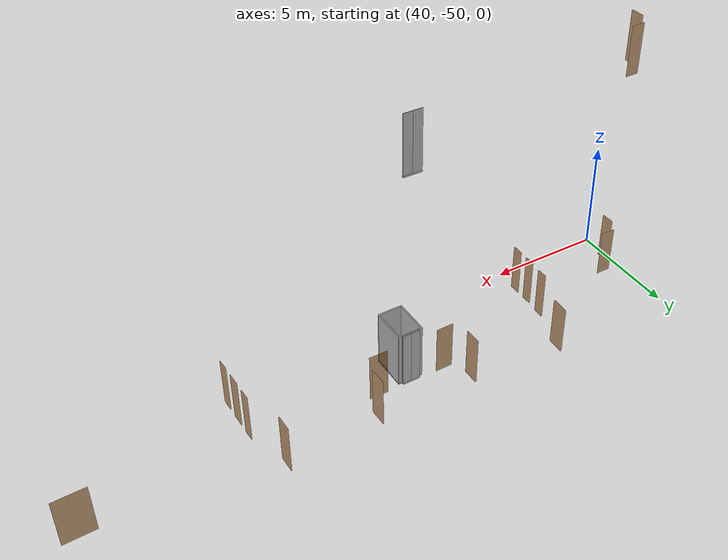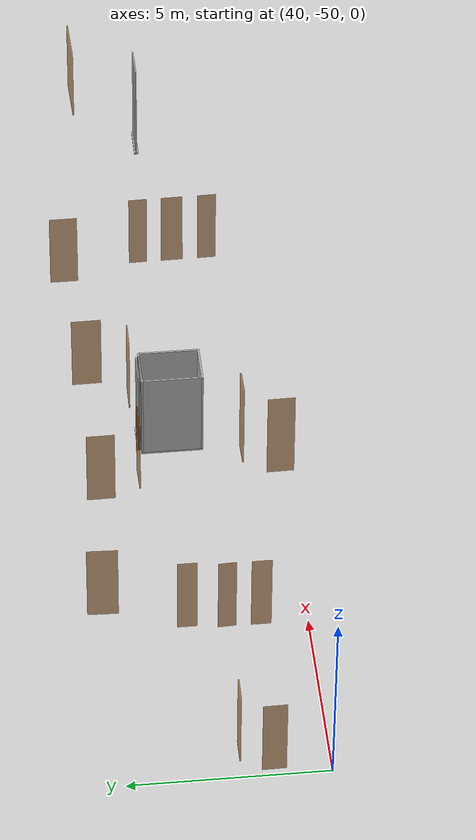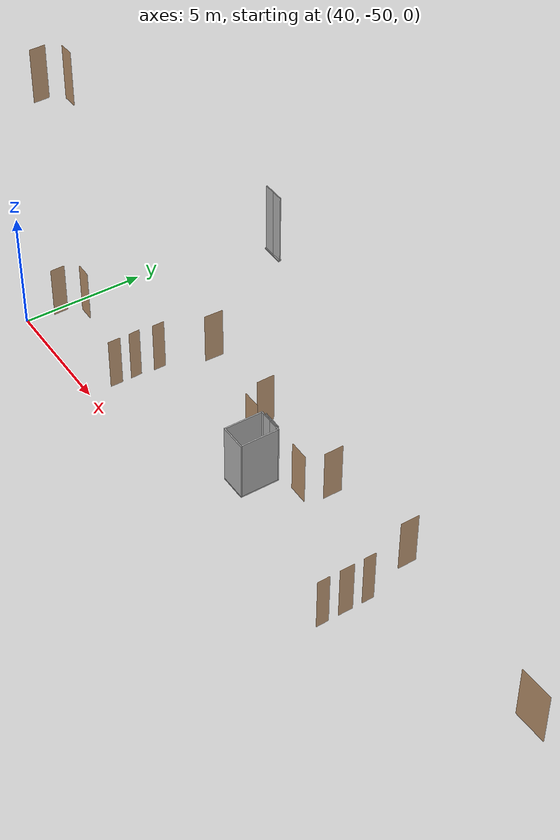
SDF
<sdf version="1.7">
 <world name="sim_world">
  <model name="door22">
   <pose>40.84886749938164 -47.81650821195254 0.0 0 0 3.127897356564713</pose>
   <link name="right">
    <pose>0 0 1.11 0 0 0</pose>
    <visual name="right_visual">
     <geometry><box><size>0.631252110748588 0.03 2.2</size></box></geometry>
     <material>
      <ambient>0.5 0.25 0 0.6</ambient>
      <diffuse>0.5 0.25 0 0.6</diffuse>
      <pbr><metal><metalness>0.0</metalness></metal></pbr>
     </material>
    </visual>
    <collision name="right_collision">
     <geometry><box><size>0.631252110748588 0.03 2.2</size></box></geometry>
     <surface><contact><collide_bitmask>0x02</collide_bitmask></contact></surface>
    </collision>
    <inertial>
     <mass>50.0</mass>
     <inertia><ixx>20.17041666666667</ixx><iyy>21.826996780518954</iyy><izz>1.6640801138522818</izz></inertia>
    </inertial>
   </link>
   <joint name="right_joint" type="revolute">
    <parent>world</parent>
    <child>right</child>
    <axis><xyz>0 0 1</xyz><limit><lower>0</lower><upper>1.57</upper></limit></axis>
    <pose>0.320626055374294 0 0 0 0 0</pose>
   </joint>
   <plugin name="register_component" filename="libregister_component.so">
    <component name="Door">
     <v_max_door>0.5</v_max_door>
     <a_max_door>0.3</a_max_door>
     <a_nom_door>0.15</a_nom_door>
     <dx_min_door>0.01</dx_min_door>
     <f_max_door>500.0</f_max_door>
     <ros_interface>true</ros_interface>
     <door name="door22" type="SwingDoor" left_joint_name="empty_joint" right_joint_name="right_joint"/>
    </component>
   </plugin>
  </model>
  <model name="door23_end">
   <pose>40.216500862856336 -48.60354288504393 0.0 0 0 1.5856953258611415</pose>
   <link name="right">
    <pose>0 0 1.11 0 0 0</pose>
    <visual name="right_visual">
     <geometry><box><size>0.5891750900136934 0.03 2.2</size></box></geometry>
     <material>
      <ambient>0.5 0.25 0 0.6</ambient>
      <diffuse>0.5 0.25 0 0.6</diffuse>
      <pbr><metal><metalness>0.0</metalness></metal></pbr>
     </material>
    </visual>
    <collision name="right_collision">
     <geometry><box><size>0.5891750900136934 0.03 2.2</size></box></geometry>
     <surface><contact><collide_bitmask>0x02</collide_bitmask></contact></surface>
    </collision>
    <inertial>
     <mass>50.0</mass>
     <inertia><ixx>20.17041666666667</ixx><iyy>21.61303036121935</iyy><izz>1.4501136945526822</izz></inertia>
    </inertial>
   </link>
   <joint name="right_joint" type="revolute">
    <parent>world</parent>
    <child>right</child>
    <axis><xyz>0 0 1</xyz><limit><lower>0</lower><upper>1.57</upper></limit></axis>
    <pose>0.2995875450068467 0 0 0 0 0</pose>
   </joint>
   <plugin name="register_component" filename="libregister_component.so">
    <component name="Door">
     <v_max_door>0.5</v_max_door>
     <a_max_door>0.3</a_max_door>
     <a_nom_door>0.15</a_nom_door>
     <dx_min_door>0.01</dx_min_door>
     <f_max_door>500.0</f_max_door>
     <ros_interface>true</ros_interface>
     <door name="door23_end" type="SwingDoor" left_joint_name="empty_joint" right_joint_name="right_joint"/>
    </component>
   </plugin>
  </model>
  <model name="door37">
   <pose>45.75023425020082 -44.9492007648427 0.0 0 0 1.535102477328866</pose>
   <link name="right">
    <pose>0 0 1.11 0 0 0</pose>
    <visual name="right_visual">
     <geometry><box><size>0.7761732290088359 0.03 2.2</size></box></geometry>
     <material>
      <ambient>0.5 0.25 0 0.6</ambient>
      <diffuse>0.5 0.25 0 0.6</diffuse>
      <pbr><metal><metalness>0.0</metalness></metal></pbr>
     </material>
    </visual>
    <collision name="right_collision">
     <geometry><box><size>0.7761732290088359 0.03 2.2</size></box></geometry>
     <surface><contact><collide_bitmask>0x02</collide_bitmask></contact></surface>
    </collision>
    <inertial>
     <mass>50.0</mass>
     <inertia><ixx>20.17041666666667</ixx><iyy>22.67685367262502</iyy><izz>2.5139370059583452</izz></inertia>
    </inertial>
   </link>
   <joint name="right_joint" type="revolute">
    <parent>world</parent>
    <child>right</child>
    <axis><xyz>0 0 -1</xyz><limit><lower>0</lower><upper>1.57</upper></limit></axis>
    <pose>0.39308661450441795 0 0 0 0 0</pose>
   </joint>
   <plugin name="register_component" filename="libregister_component.so">
    <component name="Door">
     <v_max_door>0.5</v_max_door>
     <a_max_door>0.3</a_max_door>
     <a_nom_door>0.15</a_nom_door>
     <dx_min_door>0.01</dx_min_door>
     <f_max_door>500.0</f_max_door>
     <ros_interface>true</ros_interface>
     <door name="door37" type="SwingDoor" left_joint_name="empty_joint" right_joint_name="right_joint"/>
    </component>
   </plugin>
  </model>
  <model name="door38">
   <pose>45.11608515621298 -46.994259135333024 0.0 0 0 1.5707963267948966</pose>
   <link name="right">
    <pose>0 0 1.11 0 0 0</pose>
    <visual name="right_visual">
     <geometry><box><size>0.48633469993334955 0.03 2.2</size></box></geometry>
     <material>
      <ambient>0.5 0.25 0 0.6</ambient>
      <diffuse>0.5 0.25 0 0.6</diffuse>
      <pbr><metal><metalness>0.0</metalness></metal></pbr>
     </material>
    </visual>
    <collision name="right_collision">
     <geometry><box><size>0.48633469993334955 0.03 2.2</size></box></geometry>
     <surface><contact><collide_bitmask>0x02</collide_bitmask></contact></surface>
    </collision>
    <inertial>
     <mass>50.0</mass>
     <inertia><ixx>20.17041666666667</ixx><iyy>21.15217266816359</iyy><izz>0.9892560014969216</izz></inertia>
    </inertial>
   </link>
   <joint name="right_joint" type="revolute">
    <parent>world</parent>
    <child>right</child>
    <axis><xyz>0 0 -1</xyz><limit><lower>0</lower><upper>1.57</upper></limit></axis>
    <pose>0.24816734996667478 0 0 0 0 0</pose>
   </joint>
   <plugin name="register_component" filename="libregister_component.so">
    <component name="Door">
     <v_max_door>0.5</v_max_door>
     <a_max_door>0.3</a_max_door>
     <a_nom_door>0.15</a_nom_door>
     <dx_min_door>0.01</dx_min_door>
     <f_max_door>500.0</f_max_door>
     <ros_interface>true</ros_interface>
     <door name="door38" type="SwingDoor" left_joint_name="empty_joint" right_joint_name="right_joint"/>
    </component>
   </plugin>
  </model>
  <model name="door39">
   <pose>45.0316720284141 -47.97852345123005 0.0 0 0 1.6144533395293716</pose>
   <link name="right">
    <pose>0 0 1.11 0 0 0</pose>
    <visual name="right_visual">
     <geometry><box><size>0.4542000510396327 0.03 2.2</size></box></geometry>
     <material>
      <ambient>0.5 0.25 0 0.6</ambient>
      <diffuse>0.5 0.25 0 0.6</diffuse>
      <pbr><metal><metalness>0.0</metalness></metal></pbr>
     </material>
    </visual>
    <collision name="right_collision">
     <geometry><box><size>0.4542000510396327 0.03 2.2</size></box></geometry>
     <surface><contact><collide_bitmask>0x02</collide_bitmask></contact></surface>
    </collision>
    <inertial>
     <mass>50.0</mass>
     <inertia><ixx>20.17041666666667</ixx><iyy>21.02624035985169</iyy><izz>0.8633236931850207</izz></inertia>
    </inertial>
   </link>
   <joint name="right_joint" type="revolute">
    <parent>world</parent>
    <child>right</child>
    <axis><xyz>0 0 -1</xyz><limit><lower>0</lower><upper>1.57</upper></limit></axis>
    <pose>0.23210002551981634 0 0 0 0 0</pose>
   </joint>
   <plugin name="register_component" filename="libregister_component.so">
    <component name="Door">
     <v_max_door>0.5</v_max_door>
     <a_max_door>0.3</a_max_door>
     <a_nom_door>0.15</a_nom_door>
     <dx_min_door>0.01</dx_min_door>
     <f_max_door>500.0</f_max_door>
     <ros_interface>true</ros_interface>
     <door name="door39" type="SwingDoor" left_joint_name="empty_joint" right_joint_name="right_joint"/>
    </component>
   </plugin>
  </model>
  <model name="door40">
   <pose>45.02812160501311 -48.830335236984276 0.0 0 0 1.565711337570364</pose>
   <link name="right">
    <pose>0 0 1.11 0 0 0</pose>
    <visual name="right_visual">
     <geometry><box><size>0.5029776016298969 0.03 2.2</size></box></geometry>
     <material>
      <ambient>0.5 0.25 0 0.6</ambient>
      <diffuse>0.5 0.25 0 0.6</diffuse>
      <pbr><metal><metalness>0.0</metalness></metal></pbr>
     </material>
    </visual>
    <collision name="right_collision">
     <geometry><box><size>0.5029776016298969 0.03 2.2</size></box></geometry>
     <surface><contact><collide_bitmask>0x02</collide_bitmask></contact></surface>
    </collision>
    <inertial>
     <mass>50.0</mass>
     <inertia><ixx>20.17041666666667</ixx><iyy>21.22077694892235</iyy><izz>1.0578602822556806</izz></inertia>
    </inertial>
   </link>
   <joint name="right_joint" type="revolute">
    <parent>world</parent>
    <child>right</child>
    <axis><xyz>0 0 -1</xyz><limit><lower>0</lower><upper>1.57</upper></limit></axis>
    <pose>0.25648880081494846 0 0 0 0 0</pose>
   </joint>
   <plugin name="register_component" filename="libregister_component.so">
    <component name="Door">
     <v_max_door>0.5</v_max_door>
     <a_max_door>0.3</a_max_door>
     <a_nom_door>0.15</a_nom_door>
     <dx_min_door>0.01</dx_min_door>
     <f_max_door>500.0</f_max_door>
     <ros_interface>true</ros_interface>
     <door name="door40" type="SwingDoor" left_joint_name="empty_joint" right_joint_name="right_joint"/>
    </component>
   </plugin>
  </model>
  <model name="door41_end">
   <pose>49.82349734866989 -45.25743548214437 0.0 0 0 1.5823498506551816</pose>
   <link name="right">
    <pose>0 0 1.11 0 0 0</pose>
    <visual name="right_visual">
     <geometry><box><size>0.7200157733813548 0.03 2.2</size></box></geometry>
     <material>
      <ambient>0.5 0.25 0 0.6</ambient>
      <diffuse>0.5 0.25 0 0.6</diffuse>
      <pbr><metal><metalness>0.0</metalness></metal></pbr>
     </material>
    </visual>
    <collision name="right_collision">
     <geometry><box><size>0.7200157733813548 0.03 2.2</size></box></geometry>
     <surface><contact><collide_bitmask>0x02</collide_bitmask></contact></surface>
    </collision>
    <inertial>
     <mass>50.0</mass>
     <inertia><ixx>20.17041666666667</ixx><iyy>22.326761307991465</iyy><izz>2.163844641324794</izz></inertia>
    </inertial>
   </link>
   <joint name="right_joint" type="revolute">
    <parent>world</parent>
    <child>right</child>
    <axis><xyz>0 0 -1</xyz><limit><lower>0</lower><upper>1.57</upper></limit></axis>
    <pose>0.3650078866906774 0 0 0 0 0</pose>
   </joint>
   <plugin name="register_component" filename="libregister_component.so">
    <component name="Door">
     <v_max_door>0.5</v_max_door>
     <a_max_door>0.3</a_max_door>
     <a_nom_door>0.15</a_nom_door>
     <dx_min_door>0.01</dx_min_door>
     <f_max_door>500.0</f_max_door>
     <ros_interface>true</ros_interface>
     <door name="door41_end" type="SwingDoor" left_joint_name="empty_joint" right_joint_name="right_joint"/>
    </component>
   </plugin>
  </model>
  <model name="door48_end">
   <pose>54.16727372724569 -45.25126209288388 0.0 0 0 1.5833114573458777</pose>
   <link name="right">
    <pose>0 0 1.11 0 0 0</pose>
    <visual name="right_visual">
     <geometry><box><size>0.7704586752953649 0.03 2.2</size></box></geometry>
     <material>
      <ambient>0.5 0.25 0 0.6</ambient>
      <diffuse>0.5 0.25 0 0.6</diffuse>
      <pbr><metal><metalness>0.0</metalness></metal></pbr>
     </material>
    </visual>
    <collision name="right_collision">
     <geometry><box><size>0.7704586752953649 0.03 2.2</size></box></geometry>
     <surface><contact><collide_bitmask>0x02</collide_bitmask></contact></surface>
    </collision>
    <inertial>
     <mass>50.0</mass>
     <inertia><ixx>20.17041666666667</ixx><iyy>22.640027376407872</iyy><izz>2.4771107097412024</izz></inertia>
    </inertial>
   </link>
   <joint name="right_joint" type="revolute">
    <parent>world</parent>
    <child>right</child>
    <axis><xyz>0 0 1</xyz><limit><lower>0</lower><upper>1.57</upper></limit></axis>
    <pose>0.3902293376476825 0 0 0 0 0</pose>
   </joint>
   <plugin name="register_component" filename="libregister_component.so">
    <component name="Door">
     <v_max_door>0.5</v_max_door>
     <a_max_door>0.3</a_max_door>
     <a_nom_door>0.15</a_nom_door>
     <dx_min_door>0.01</dx_min_door>
     <f_max_door>500.0</f_max_door>
     <ros_interface>true</ros_interface>
     <door name="door48_end" type="SwingDoor" left_joint_name="empty_joint" right_joint_name="right_joint"/>
    </component>
   </plugin>
  </model>
  <model name="door47">
   <pose>58.26537529799756 -44.976357880979194 0.0 0 0 1.57327502040177</pose>
   <link name="right">
    <pose>0 0 1.11 0 0 0</pose>
    <visual name="right_visual">
     <geometry><box><size>0.7383446026669765 0.03 2.2</size></box></geometry>
     <material>
      <ambient>0.5 0.25 0 0.6</ambient>
      <diffuse>0.5 0.25 0 0.6</diffuse>
      <pbr><metal><metalness>0.0</metalness></metal></pbr>
     </material>
    </visual>
    <collision name="right_collision">
     <geometry><box><size>0.7383446026669765 0.03 2.2</size></box></geometry>
     <surface><contact><collide_bitmask>0x02</collide_bitmask></contact></surface>
    </collision>
    <inertial>
     <mass>50.0</mass>
     <inertia><ixx>20.17041666666667</ixx><iyy>22.438136467864403</iyy><izz>2.2752198011977316</izz></inertia>
    </inertial>
   </link>
   <joint name="right_joint" type="revolute">
    <parent>world</parent>
    <child>right</child>
    <axis><xyz>0 0 1</xyz><limit><lower>0</lower><upper>1.57</upper></limit></axis>
    <pose>0.3741723013334883 0 0 0 0 0</pose>
   </joint>
   <plugin name="register_component" filename="libregister_component.so">
    <component name="Door">
     <v_max_door>0.5</v_max_door>
     <a_max_door>0.3</a_max_door>
     <a_nom_door>0.15</a_nom_door>
     <dx_min_door>0.01</dx_min_door>
     <f_max_door>500.0</f_max_door>
     <ros_interface>true</ros_interface>
     <door name="door47" type="SwingDoor" left_joint_name="empty_joint" right_joint_name="right_joint"/>
    </component>
   </plugin>
  </model>
  <model name="door46">
   <pose>58.85664397221597 -47.03357464017739 0.0 0 0 1.59644527397621</pose>
   <link name="right">
    <pose>0 0 1.11 0 0 0</pose>
    <visual name="right_visual">
     <geometry><box><size>0.48385968100589 0.03 2.2</size></box></geometry>
     <material>
      <ambient>0.5 0.25 0 0.6</ambient>
      <diffuse>0.5 0.25 0 0.6</diffuse>
      <pbr><metal><metalness>0.0</metalness></metal></pbr>
     </material>
    </visual>
    <collision name="right_collision">
     <geometry><box><size>0.48385968100589 0.03 2.2</size></box></geometry>
     <surface><contact><collide_bitmask>0x02</collide_bitmask></contact></surface>
    </collision>
    <inertial>
     <mass>50.0</mass>
     <inertia><ixx>20.17041666666667</ixx><iyy>21.142167462096346</iyy><izz>0.9792507954296735</izz></inertia>
    </inertial>
   </link>
   <joint name="right_joint" type="revolute">
    <parent>world</parent>
    <child>right</child>
    <axis><xyz>0 0 1</xyz><limit><lower>0</lower><upper>1.57</upper></limit></axis>
    <pose>0.246929840502945 0 0 0 0 0</pose>
   </joint>
   <plugin name="register_component" filename="libregister_component.so">
    <component name="Door">
     <v_max_door>0.5</v_max_door>
     <a_max_door>0.3</a_max_door>
     <a_nom_door>0.15</a_nom_door>
     <dx_min_door>0.01</dx_min_door>
     <f_max_door>500.0</f_max_door>
     <ros_interface>true</ros_interface>
     <door name="door46" type="SwingDoor" left_joint_name="empty_joint" right_joint_name="right_joint"/>
    </component>
   </plugin>
  </model>
  <model name="door45">
   <pose>58.86732422546709 -47.953395148465546 0.0 0 0 1.5856034779132602</pose>
   <link name="right">
    <pose>0 0 1.11 0 0 0</pose>
    <visual name="right_visual">
     <geometry><box><size>0.5772319475344877 0.03 2.2</size></box></geometry>
     <material>
      <ambient>0.5 0.25 0 0.6</ambient>
      <diffuse>0.5 0.25 0 0.6</diffuse>
      <pbr><metal><metalness>0.0</metalness></metal></pbr>
     </material>
    </visual>
    <collision name="right_collision">
     <geometry><box><size>0.5772319475344877 0.03 2.2</size></box></geometry>
     <surface><contact><collide_bitmask>0x02</collide_bitmask></contact></surface>
    </collision>
    <inertial>
     <mass>50.0</mass>
     <inertia><ixx>20.17041666666667</ixx><iyy>21.554986338560244</iyy><izz>1.3920696718935732</izz></inertia>
    </inertial>
   </link>
   <joint name="right_joint" type="revolute">
    <parent>world</parent>
    <child>right</child>
    <axis><xyz>0 0 1</xyz><limit><lower>0</lower><upper>1.57</upper></limit></axis>
    <pose>0.29361597376724385 0 0 0 0 0</pose>
   </joint>
   <plugin name="register_component" filename="libregister_component.so">
    <component name="Door">
     <v_max_door>0.5</v_max_door>
     <a_max_door>0.3</a_max_door>
     <a_nom_door>0.15</a_nom_door>
     <dx_min_door>0.01</dx_min_door>
     <f_max_door>500.0</f_max_door>
     <ros_interface>true</ros_interface>
     <door name="door45" type="SwingDoor" left_joint_name="empty_joint" right_joint_name="right_joint"/>
    </component>
   </plugin>
  </model>
  <model name="door44">
   <pose>58.878308800724 -48.89718463759136 0.0 0 0 1.5971151132183814</pose>
   <link name="right">
    <pose>0 0 1.11 0 0 0</pose>
    <visual name="right_visual">
     <geometry><box><size>0.49442176305988383 0.03 2.2</size></box></geometry>
     <material>
      <ambient>0.5 0.25 0 0.6</ambient>
      <diffuse>0.5 0.25 0 0.6</diffuse>
      <pbr><metal><metalness>0.0</metalness></metal></pbr>
     </material>
    </visual>
    <collision name="right_collision">
     <geometry><box><size>0.49442176305988383 0.03 2.2</size></box></geometry>
     <surface><contact><collide_bitmask>0x02</collide_bitmask></contact></surface>
    </collision>
    <inertial>
     <mass>50.0</mass>
     <inertia><ixx>20.17041666666667</ixx><iyy>21.185220332446853</iyy><izz>1.0223036657801832</izz></inertia>
    </inertial>
   </link>
   <joint name="right_joint" type="revolute">
    <parent>world</parent>
    <child>right</child>
    <axis><xyz>0 0 1</xyz><limit><lower>0</lower><upper>1.57</upper></limit></axis>
    <pose>0.2522108815299419 0 0 0 0 0</pose>
   </joint>
   <plugin name="register_component" filename="libregister_component.so">
    <component name="Door">
     <v_max_door>0.5</v_max_door>
     <a_max_door>0.3</a_max_door>
     <a_nom_door>0.15</a_nom_door>
     <dx_min_door>0.01</dx_min_door>
     <f_max_door>500.0</f_max_door>
     <ros_interface>true</ros_interface>
     <door name="door44" type="SwingDoor" left_joint_name="empty_joint" right_joint_name="right_joint"/>
    </component>
   </plugin>
  </model>
  <model name="door56">
   <pose>65.9226821333284 -45.77079772287834 0.0 0 0 -3.11463371529568</pose>
   <link name="right">
    <pose>0 0 1.11 0 0 0</pose>
    <visual name="right_visual">
     <geometry><box><size>1.339390373147323 0.03 2.2</size></box></geometry>
     <material>
      <ambient>0.5 0.25 0 0.6</ambient>
      <diffuse>0.5 0.25 0 0.6</diffuse>
      <pbr><metal><metalness>0.0</metalness></metal></pbr>
     </material>
    </visual>
    <collision name="right_collision">
     <geometry><box><size>1.339390373147323 0.03 2.2</size></box></geometry>
     <surface><contact><collide_bitmask>0x02</collide_bitmask></contact></surface>
    </collision>
    <inertial>
     <mass>50.0</mass>
     <inertia><ixx>20.17041666666667</ixx><iyy>27.64152738199886</iyy><izz>7.478610715332187</izz></inertia>
    </inertial>
   </link>
   <joint name="right_joint" type="revolute">
    <parent>world</parent>
    <child>right</child>
    <axis><xyz>0 0 -1</xyz><limit><lower>0</lower><upper>1.57</upper></limit></axis>
    <pose>0.6746951865736615 0 0 0 0 0</pose>
   </joint>
   <plugin name="register_component" filename="libregister_component.so">
    <component name="Door">
     <v_max_door>0.5</v_max_door>
     <a_max_door>0.3</a_max_door>
     <a_nom_door>0.15</a_nom_door>
     <dx_min_door>0.01</dx_min_door>
     <f_max_door>500.0</f_max_door>
     <ros_interface>true</ros_interface>
     <door name="door56" type="SwingDoor" left_joint_name="empty_joint" right_joint_name="right_joint"/>
    </component>
   </plugin>
  </model>
  <model name="door42_end">
   <pose>50.46102296776968 -46.275899794883514 0.0 0 0 -3.1277409922275115</pose>
   <link name="right">
    <pose>0 0 1.11 0 0 0</pose>
    <visual name="right_visual">
     <geometry><box><size>0.7432837204372719 0.03 2.2</size></box></geometry>
     <material>
      <ambient>0.5 0.25 0 0.6</ambient>
      <diffuse>0.5 0.25 0 0.6</diffuse>
      <pbr><metal><metalness>0.0</metalness></metal></pbr>
     </material>
    </visual>
    <collision name="right_collision">
     <geometry><box><size>0.7432837204372719 0.03 2.2</size></box></geometry>
     <surface><contact><collide_bitmask>0x02</collide_bitmask></contact></surface>
    </collision>
    <inertial>
     <mass>50.0</mass>
     <inertia><ixx>20.17041666666667</ixx><iyy>22.468627871112805</iyy><izz>2.3057112044461356</izz></inertia>
    </inertial>
   </link>
   <joint name="right_joint" type="revolute">
    <parent>world</parent>
    <child>right</child>
    <axis><xyz>0 0 -1</xyz><limit><lower>0</lower><upper>1.57</upper></limit></axis>
    <pose>0.37664186021863594 0 0 0 0 0</pose>
   </joint>
   <plugin name="register_component" filename="libregister_component.so">
    <component name="Door">
     <v_max_door>0.5</v_max_door>
     <a_max_door>0.3</a_max_door>
     <a_nom_door>0.15</a_nom_door>
     <dx_min_door>0.01</dx_min_door>
     <f_max_door>500.0</f_max_door>
     <ros_interface>true</ros_interface>
     <door name="door42_end" type="SwingDoor" left_joint_name="empty_joint" right_joint_name="right_joint"/>
    </component>
   </plugin>
  </model>
  <model name="door43_end">
   <pose>53.52189370209148 -46.28747852262795 0.0 0 0 3.1257657631263567</pose>
   <link name="right">
    <pose>0 0 1.11 0 0 0</pose>
    <visual name="right_visual">
     <geometry><box><size>0.8012791589426598 0.03 2.2</size></box></geometry>
     <material>
      <ambient>0.5 0.25 0 0.6</ambient>
      <diffuse>0.5 0.25 0 0.6</diffuse>
      <pbr><metal><metalness>0.0</metalness></metal></pbr>
     </material>
    </visual>
    <collision name="right_collision">
     <geometry><box><size>0.8012791589426598 0.03 2.2</size></box></geometry>
     <surface><contact><collide_bitmask>0x02</collide_bitmask></contact></surface>
    </collision>
    <inertial>
     <mass>50.0</mass>
     <inertia><ixx>20.17041666666667</ixx><iyy>22.841867877316073</iyy><izz>2.678951210649401</izz></inertia>
    </inertial>
   </link>
   <joint name="right_joint" type="revolute">
    <parent>world</parent>
    <child>right</child>
    <axis><xyz>0 0 1</xyz><limit><lower>0</lower><upper>1.57</upper></limit></axis>
    <pose>0.4056395794713299 0 0 0 0 0</pose>
   </joint>
   <plugin name="register_component" filename="libregister_component.so">
    <component name="Door">
     <v_max_door>0.5</v_max_door>
     <a_max_door>0.3</a_max_door>
     <a_nom_door>0.15</a_nom_door>
     <dx_min_door>0.01</dx_min_door>
     <f_max_door>500.0</f_max_door>
     <ros_interface>true</ros_interface>
     <door name="door43_end" type="SwingDoor" left_joint_name="empty_joint" right_joint_name="right_joint"/>
    </component>
   </plugin>
  </model>
  <model name="N1_door12">
   <pose>40.83631374547366 -47.783362157011254 10.0 0 0 -3.1286489684968375</pose>
   <link name="right">
    <pose>0 0 1.11 0 0 0</pose>
    <visual name="right_visual">
     <geometry><box><size>0.5710684518580249 0.03 2.2</size></box></geometry>
     <material>
      <ambient>0.5 0.25 0 0.6</ambient>
      <diffuse>0.5 0.25 0 0.6</diffuse>
      <pbr><metal><metalness>0.0</metalness></metal></pbr>
     </material>
    </visual>
    <collision name="right_collision">
     <geometry><box><size>0.5710684518580249 0.03 2.2</size></box></geometry>
     <surface><contact><collide_bitmask>0x02</collide_bitmask></contact></surface>
    </collision>
    <inertial>
     <mass>50.0</mass>
     <inertia><ixx>20.17041666666667</ixx><iyy>21.525496569614674</iyy><izz>1.3625799029480057</izz></inertia>
    </inertial>
   </link>
   <joint name="right_joint" type="revolute">
    <parent>world</parent>
    <child>right</child>
    <axis><xyz>0 0 1</xyz><limit><lower>0</lower><upper>1.57</upper></limit></axis>
    <pose>0.29053422592901246 0 0 0 0 0</pose>
   </joint>
   <plugin name="register_component" filename="libregister_component.so">
    <component name="Door">
     <v_max_door>0.5</v_max_door>
     <a_max_door>0.3</a_max_door>
     <a_nom_door>0.15</a_nom_door>
     <dx_min_door>0.01</dx_min_door>
     <f_max_door>500.0</f_max_door>
     <ros_interface>true</ros_interface>
     <door name="N1_door12" type="SwingDoor" left_joint_name="empty_joint" right_joint_name="right_joint"/>
    </component>
   </plugin>
  </model>
  <model name="N1_door13_end">
   <pose>40.1975593199231 -48.5869645045281 10.0 0 0 1.5893069165039657</pose>
   <link name="right">
    <pose>0 0 1.11 0 0 0</pose>
    <visual name="right_visual">
     <geometry><box><size>0.6107248989328073 0.03 2.2</size></box></geometry>
     <material>
      <ambient>0.5 0.25 0 0.6</ambient>
      <diffuse>0.5 0.25 0 0.6</diffuse>
      <pbr><metal><metalness>0.0</metalness></metal></pbr>
     </material>
    </visual>
    <collision name="right_collision">
     <geometry><box><size>0.6107248989328073 0.03 2.2</size></box></geometry>
     <surface><contact><collide_bitmask>0x02</collide_bitmask></contact></surface>
    </collision>
    <inertial>
     <mass>50.0</mass>
     <inertia><ixx>20.17041666666667</ixx><iyy>21.72077042573537</iyy><izz>1.5578537590686992</izz></inertia>
    </inertial>
   </link>
   <joint name="right_joint" type="revolute">
    <parent>world</parent>
    <child>right</child>
    <axis><xyz>0 0 1</xyz><limit><lower>0</lower><upper>1.57</upper></limit></axis>
    <pose>0.3103624494664037 0 0 0 0 0</pose>
   </joint>
   <plugin name="register_component" filename="libregister_component.so">
    <component name="Door">
     <v_max_door>0.5</v_max_door>
     <a_max_door>0.3</a_max_door>
     <a_nom_door>0.15</a_nom_door>
     <dx_min_door>0.01</dx_min_door>
     <f_max_door>500.0</f_max_door>
     <ros_interface>true</ros_interface>
     <door name="N1_door13_end" type="SwingDoor" left_joint_name="empty_joint" right_joint_name="right_joint"/>
    </component>
   </plugin>
  </model>
  <model name="ShaftDoor_lift_TD_n0_door_lift">
   <pose>51.9666053711237 -46.39236851920336 0.0 0 0 0.0</pose>
   <link name="right_door">
    <pose>0.2 0 1.25 0 0 0</pose>
    <visual name="right_door_visual">
     <geometry><box><size>0.4 0.03 2.5</size></box></geometry>
     <material>
      <ambient>0.5 0.5 0.5 1</ambient>
      <diffuse>0.7 0.7 0.7 1</diffuse>
      <specular>0.6 0.6 0.6 1</specular>
      <emissive>0.1 0.1 0.1 1</emissive>
     </material>
    </visual>
    <collision name="right_door_collision">
     <geometry><box><size>0.4 0.03 2.5</size></box></geometry>
     <surface><contact><collide_bitmask>0x02</collide_bitmask></contact></surface>
    </collision>
   </link>
   <link name="left_door">
    <pose>-0.2 0 1.25 0 0 0</pose>
    <visual name="left_door_visual">
     <geometry><box><size>0.4 0.03 2.5</size></box></geometry>
     <material>
      <ambient>0.5 0.5 0.5 1</ambient>
      <diffuse>0.7 0.7 0.7 1</diffuse>
      <specular>0.6 0.6 0.6 1</specular>
      <emissive>0.1 0.1 0.1 1</emissive>
     </material>
    </visual>
    <collision name="left_door_collision">
     <geometry><box><size>0.4 0.03 2.5</size></box></geometry>
     <surface><contact><collide_bitmask>0x02</collide_bitmask></contact></surface>
    </collision>
   </link>
   <joint name="right_joint" type="prismatic">
    <parent>world</parent>
    <child>right_door</child>
    <axis><xyz>1 0 0</xyz><limit><lower>0</lower><upper>0.4</upper></limit></axis>
   </joint>
   <joint name="left_joint" type="prismatic">
    <parent>world</parent>
    <child>left_door</child>
    <axis><xyz>1 0 0</xyz><limit><lower>-0.4</lower><upper>0</upper></limit></axis>
   </joint>
   <link name="ramp">
    <pose>0 0 -0.025 0 0 0</pose>
    <visual name="ramp_visual">
     <geometry><box><size>0.8 0.1 0.05</size></box></geometry>
     <material>
      <ambient>0.5 0.5 0.5 1</ambient>
      <diffuse>0.7 0.7 0.7 1</diffuse>
      <specular>0.6 0.6 0.6 1</specular>
      <emissive>0.1 0.1 0.1 1</emissive>
     </material>
    </visual>
    <collision name="ramp_collision">
     <geometry><box><size>0.8 0.1 0.05</size></box></geometry>
     <surface><contact><collide_bitmask>0x02</collide_bitmask></contact></surface>
    </collision>
   </link>
   <joint name="ramp_joint" type="fixed"><parent>world</parent><child>ramp</child></joint>
   <plugin name="register_component" filename="libregister_component.so">
    <component name="Door">
     <v_max_door>0.3</v_max_door>
     <a_max_door>0.2</a_max_door>
     <a_nom_door>0.1</a_nom_door>
     <dx_min_door>0.0001</dx_min_door>
     <f_max_door>35.0</f_max_door>
     <door left_joint_name="left_joint" name="ShaftDoor_lift_TD_n0_door_lift" right_joint_name="right_joint" type="DoubleSlidingDoor"/>
    </component>
   </plugin>
  </model>
  <model name="ShaftDoor_lift_TD_n1_door_lift">
   <pose>51.9666053711237 -46.39236851920336 10.0 0 0 0.0</pose>
   <link name="right_door">
    <pose>0.2 0 1.25 0 0 0</pose>
    <visual name="right_door_visual">
     <geometry><box><size>0.4 0.03 2.5</size></box></geometry>
     <material>
      <ambient>0.5 0.5 0.5 1</ambient>
      <diffuse>0.7 0.7 0.7 1</diffuse>
      <specular>0.6 0.6 0.6 1</specular>
      <emissive>0.1 0.1 0.1 1</emissive>
     </material>
    </visual>
    <collision name="right_door_collision">
     <geometry><box><size>0.4 0.03 2.5</size></box></geometry>
     <surface><contact><collide_bitmask>0x02</collide_bitmask></contact></surface>
    </collision>
   </link>
   <link name="left_door">
    <pose>-0.2 0 1.25 0 0 0</pose>
    <visual name="left_door_visual">
     <geometry><box><size>0.4 0.03 2.5</size></box></geometry>
     <material>
      <ambient>0.5 0.5 0.5 1</ambient>
      <diffuse>0.7 0.7 0.7 1</diffuse>
      <specular>0.6 0.6 0.6 1</specular>
      <emissive>0.1 0.1 0.1 1</emissive>
     </material>
    </visual>
    <collision name="left_door_collision">
     <geometry><box><size>0.4 0.03 2.5</size></box></geometry>
     <surface><contact><collide_bitmask>0x02</collide_bitmask></contact></surface>
    </collision>
   </link>
   <joint name="right_joint" type="prismatic">
    <parent>world</parent>
    <child>right_door</child>
    <axis><xyz>1 0 0</xyz><limit><lower>0</lower><upper>0.4</upper></limit></axis>
   </joint>
   <joint name="left_joint" type="prismatic">
    <parent>world</parent>
    <child>left_door</child>
    <axis><xyz>1 0 0</xyz><limit><lower>-0.4</lower><upper>0</upper></limit></axis>
   </joint>
   <link name="ramp">
    <pose>0 0 -0.025 0 0 0</pose>
    <visual name="ramp_visual">
     <geometry><box><size>0.8 0.1 0.05</size></box></geometry>
     <material>
      <ambient>0.5 0.5 0.5 1</ambient>
      <diffuse>0.7 0.7 0.7 1</diffuse>
      <specular>0.6 0.6 0.6 1</specular>
      <emissive>0.1 0.1 0.1 1</emissive>
     </material>
    </visual>
    <collision name="ramp_collision">
     <geometry><box><size>0.8 0.1 0.05</size></box></geometry>
     <surface><contact><collide_bitmask>0x02</collide_bitmask></contact></surface>
    </collision>
   </link>
   <joint name="ramp_joint" type="fixed"><parent>world</parent><child>ramp</child></joint>
   <plugin name="register_component" filename="libregister_component.so">
    <component name="Door">
     <v_max_door>0.3</v_max_door>
     <a_max_door>0.2</a_max_door>
     <a_nom_door>0.1</a_nom_door>
     <dx_min_door>0.0001</dx_min_door>
     <f_max_door>35.0</f_max_door>
     <door left_joint_name="left_joint" name="ShaftDoor_lift_TD_n1_door_lift" right_joint_name="right_joint" type="DoubleSlidingDoor"/>
    </component>
   </plugin>
  </model>
  <model name="lift">
   <link name="platform">
    <inertial>
     <mass>1200</mass>
     <inertia><ixx>121.25000000000001</ixx><iyy>256.25000000000006</iyy><izz>377.00000000000006</izz></inertia>
    </inertial>
    <visual name="floor_visual">
     <pose>0 0 -0.025 0 0 0</pose>
     <geometry><box><size>1.1 1.6 0.05</size></box></geometry>
     <material>
      <ambient>0.5 0.5 0.5 1</ambient>
      <diffuse>0.7 0.7 0.7 1</diffuse>
      <specular>0.6 0.6 0.6 1</specular>
      <emissive>0.1 0.1 0.1 1</emissive>
     </material>
    </visual>
    <collision name="floor_collision">
     <pose>0 0 -0.025 0 0 0</pose>
     <geometry><box><size>1.1 1.6 0.05</size></box></geometry>
     <surface><contact><collide_bitmask>0x01</collide_bitmask></contact></surface>
    </collision>
    <visual name="frontwall1_visual">
     <pose>-0.47500000000000003 0.775 1.25 0 0 0</pose>
     <geometry><box><size>0.15000000000000002 0.05 2.5</size></box></geometry>
     <material>
      <ambient>0.5 0.5 0.5 1</ambient>
      <diffuse>0.7 0.7 0.7 1</diffuse>
      <specular>0.6 0.6 0.6 1</specular>
      <emissive>0.1 0.1 0.1 1</emissive>
     </material>
    </visual>
    <collision name="frontwall1_collision">
     <pose>-0.47500000000000003 0.775 1.25 0 0 0</pose>
     <geometry><box><size>0.15000000000000002 0.05 2.5</size></box></geometry>
     <surface><contact><collide_bitmask>0x01</collide_bitmask></contact></surface>
    </collision>
    <visual name="frontwall2_visual">
     <pose>0.47500000000000003 0.775 1.25 0 0 0</pose>
     <geometry><box><size>0.15000000000000002 0.05 2.5</size></box></geometry>
     <material>
      <ambient>0.5 0.5 0.5 1</ambient>
      <diffuse>0.7 0.7 0.7 1</diffuse>
      <specular>0.6 0.6 0.6 1</specular>
      <emissive>0.1 0.1 0.1 1</emissive>
     </material>
    </visual>
    <collision name="frontwall2_collision">
     <pose>0.47500000000000003 0.775 1.25 0 0 0</pose>
     <geometry><box><size>0.15000000000000002 0.05 2.5</size></box></geometry>
     <surface><contact><collide_bitmask>0x01</collide_bitmask></contact></surface>
    </collision>
    <visual name="backwall1_visual">
     <pose>0.0 -0.775 1.25 0 0 0</pose>
     <geometry><box><size>1.1 0.05 2.5</size></box></geometry>
     <material>
      <ambient>0.5 0.5 0.5 1</ambient>
      <diffuse>0.7 0.7 0.7 1</diffuse>
      <specular>0.6 0.6 0.6 1</specular>
      <emissive>0.1 0.1 0.1 1</emissive>
     </material>
    </visual>
    <collision name="backwall1_collision">
     <pose>0.0 -0.775 1.25 0 0 0</pose>
     <geometry><box><size>1.1 0.05 2.5</size></box></geometry>
     <surface><contact><collide_bitmask>0x01</collide_bitmask></contact></surface>
    </collision>
    <visual name="leftwall1_visual">
     <pose>-0.525 0.0 1.25 0 0 1.5707963267948966</pose>
     <geometry><box><size>1.5 0.05 2.5</size></box></geometry>
     <material>
      <ambient>0.5 0.5 0.5 1</ambient>
      <diffuse>0.7 0.7 0.7 1</diffuse>
      <specular>0.6 0.6 0.6 1</specular>
      <emissive>0.1 0.1 0.1 1</emissive>
     </material>
    </visual>
    <collision name="leftwall1_collision">
     <pose>-0.525 0.0 1.25 0 0 1.5707963267948966</pose>
     <geometry><box><size>1.5 0.05 2.5</size></box></geometry>
     <surface><contact><collide_bitmask>0x01</collide_bitmask></contact></surface>
    </collision>
    <visual name="rightwall1_visual">
     <pose>0.525 0.0 1.25 0 0 1.5707963267948966</pose>
     <geometry><box><size>1.5 0.05 2.5</size></box></geometry>
     <material>
      <ambient>0.5 0.5 0.5 1</ambient>
      <diffuse>0.7 0.7 0.7 1</diffuse>
      <specular>0.6 0.6 0.6 1</specular>
      <emissive>0.1 0.1 0.1 1</emissive>
     </material>
    </visual>
    <collision name="rightwall1_collision">
     <pose>0.525 0.0 1.25 0 0 1.5707963267948966</pose>
     <geometry><box><size>1.5 0.05 2.5</size></box></geometry>
     <surface><contact><collide_bitmask>0x01</collide_bitmask></contact></surface>
    </collision>
   </link>
   <joint name="cabin_joint" type="prismatic">
    <parent>world</parent>
    <child>platform</child>
    <axis><xyz>0 0 1</xyz></axis>
   </joint>
   <model name="CabinDoor_lift_door_lift">
    <pose>0.0 0.775 0 0 0 0.0</pose>
    <link name="right_door">
     <pose>0.2 0 1.25 0 0 0</pose>
     <visual name="right_door_visual">
      <geometry><box><size>0.4 0.03 2.5</size></box></geometry>
      <material>
       <ambient>0.5 0.5 0.5 1</ambient>
       <diffuse>0.7 0.7 0.7 1</diffuse>
       <specular>0.6 0.6 0.6 1</specular>
       <emissive>0.1 0.1 0.1 1</emissive>
      </material>
     </visual>
     <collision name="right_door_collision">
      <geometry><box><size>0.4 0.03 2.5</size></box></geometry>
      <surface><contact><collide_bitmask>0x02</collide_bitmask></contact></surface>
     </collision>
    </link>
    <link name="left_door">
     <pose>-0.2 0 1.25 0 0 0</pose>
     <visual name="left_door_visual">
      <geometry><box><size>0.4 0.03 2.5</size></box></geometry>
      <material>
       <ambient>0.5 0.5 0.5 1</ambient>
       <diffuse>0.7 0.7 0.7 1</diffuse>
       <specular>0.6 0.6 0.6 1</specular>
       <emissive>0.1 0.1 0.1 1</emissive>
      </material>
     </visual>
     <collision name="left_door_collision">
      <geometry><box><size>0.4 0.03 2.5</size></box></geometry>
      <surface><contact><collide_bitmask>0x02</collide_bitmask></contact></surface>
     </collision>
    </link>
    <plugin name="register_component" filename="libregister_component.so">
     <component name="Door">
      <v_max_door>0.3</v_max_door>
      <a_max_door>0.2</a_max_door>
      <a_nom_door>0.1</a_nom_door>
      <dx_min_door>0.0001</dx_min_door>
      <f_max_door>35.0</f_max_door>
      <door left_joint_name="CabinDoor_lift_door_lift_left_joint" name="CabinDoor_lift_door_lift" right_joint_name="CabinDoor_lift_door_lift_right_joint" type="DoubleSlidingDoor"/>
     </component>
    </plugin>
   </model>
   <joint name="CabinDoor_lift_door_lift_right_joint" type="prismatic">
    <parent>platform</parent>
    <child>CabinDoor_lift_door_lift::right_door</child>
    <axis><xyz>1 0 0</xyz><limit><lower>0</lower><upper>0.4</upper></limit></axis>
   </joint>
   <joint name="CabinDoor_lift_door_lift_left_joint" type="prismatic">
    <parent>platform</parent>
    <child>CabinDoor_lift_door_lift::left_door</child>
    <axis><xyz>1 0 0</xyz><limit><lower>-0.4</lower><upper>0</upper></limit></axis>
   </joint>
   <plugin name="register_component" filename="libregister_component.so">
    <component name="Lift">
     <lift_name>lift</lift_name>
     <floor name="TD_n0" elevation="0.0">
      <door_pair cabin_door="CabinDoor_lift_door_lift" shaft_door="ShaftDoor_lift_TD_n0_door_lift"/>
     </floor>
     <floor name="TD_n1" elevation="10.0">
      <door_pair cabin_door="CabinDoor_lift_door_lift" shaft_door="ShaftDoor_lift_TD_n1_door_lift"/>
     </floor>
     <initial_floor>TD_n0</initial_floor>
     <v_max_cabin>2.0</v_max_cabin>
     <a_max_cabin>1.2</a_max_cabin>
     <a_nom_cabin>1.0</a_nom_cabin>
     <dx_min_cabin>0.001</dx_min_cabin>
     <f_max_cabin>25323.0</f_max_cabin>
     <cabin_joint_name>cabin_joint</cabin_joint_name>
    </component>
   </plugin>
   <pose>51.9666053711237 -47.24236851920336 0 0 0 0.0</pose>
  </model>
 </world>
</sdf>
